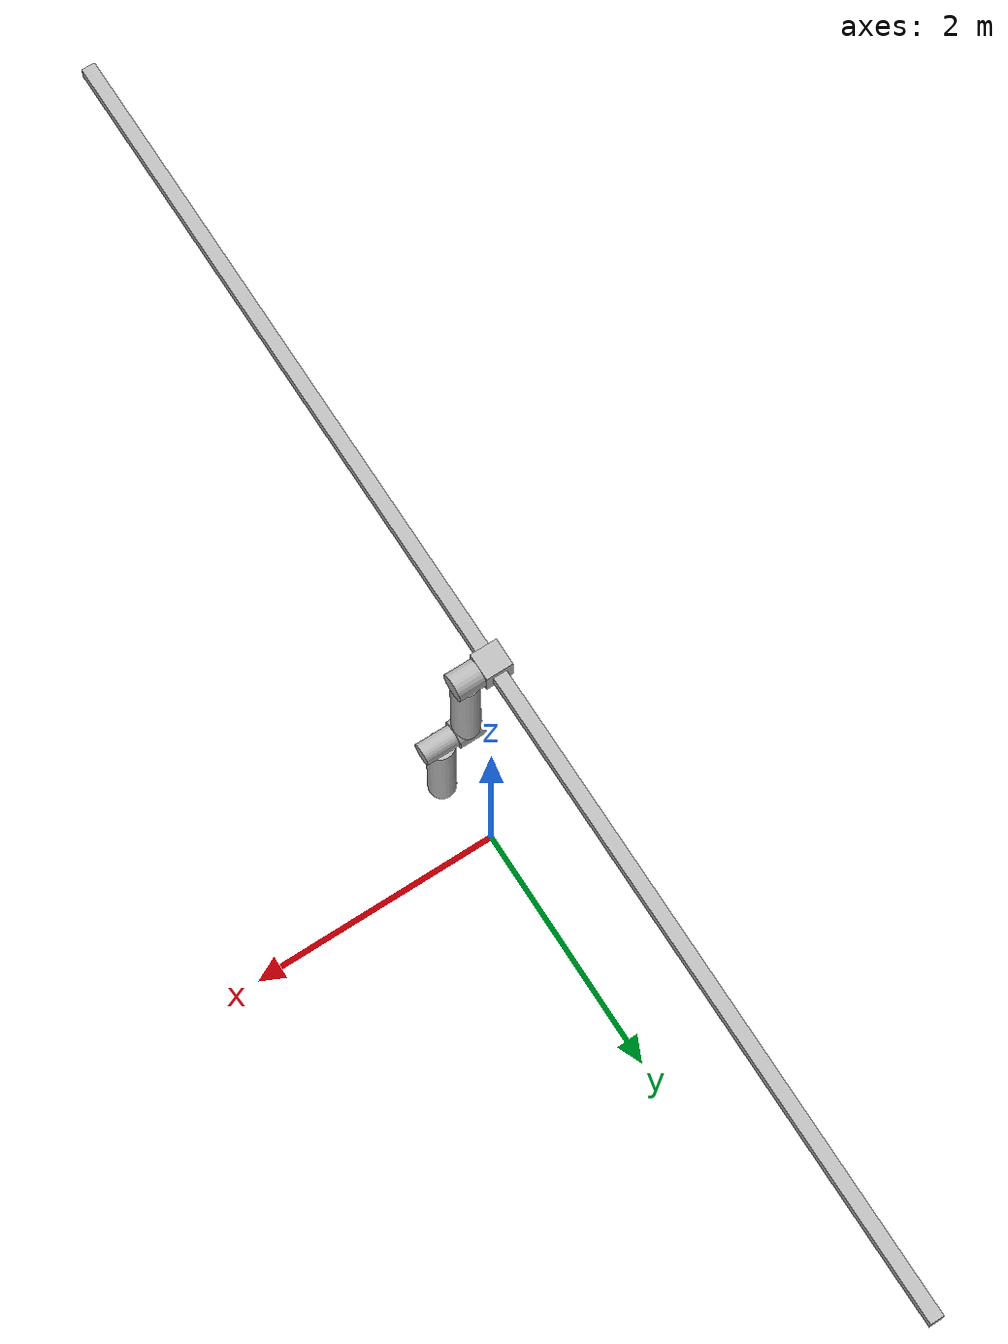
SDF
<?xml version="1.0" ?>
<sdf version="1.6">
  <world name="default">
    <physics name="1ms" type="ode">
      <max_step_size>0.01</max_step_size>
      <real_time_factor>1</real_time_factor>
    </physics>

    <light type="directional" name="sun">
      <cast_shadows>false</cast_shadows>
      <pose>0 0 10 0 0 0</pose>
      <diffuse>0.8 0.8 0.8 1</diffuse>
      <specular>0.2 0.2 0.2 1</specular>
      <attenuation>
        <range>1000</range>
        <constant>0.9</constant>
        <linear>0.01</linear>
        <quadratic>0.001</quadratic>
      </attenuation>
      <direction>-0.5 0.1 -0.9</direction>
    </light>

    <joint name="fixed to ground" type="prismatic">
      <parent>world</parent>
      <child>double_pendulum_rail::rail</child>
        <axis>
          <xyz>1.0 0 0</xyz>
          <limit>
            <lower>0.0</lower>
            <upper>0.0</upper>
          </limit>
        </axis>
    </joint>

    <model name="double_pendulum_rail">
      <!-- rail -->
      <link name="rail">
        <pose>0 0 4 0 0 0</pose>
        <visual name="vis_rail">
          <pose>0 0 0 0 0 0</pose>
          <geometry>
            <box>
              <size>0.1 10 0.1</size>
            </box>
          </geometry>
        </visual>
      </link>

      <!-- support -->
      <link name="trolley">
        <pose>0 0 4 0 0 0</pose>
        <inertial>
          <mass>100</mass>
        </inertial>
        <visual name="vis_trolley_on_rail">
          <pose>0 0 0 0 0 0</pose>
          <geometry>
            <box>
              <size>0.2 0.2 0.2</size>
            </box>
          </geometry>
        </visual>
      </link>
      <!-- upper link, length 1, IC -90 degrees -->
      <link name="upper_link">
        <pose>0.2 0 4 -3.14159 0 0</pose>
        <self_collide>0</self_collide>
        <inertial>
          <pose>0 0 0.5 0 0 0</pose>
        </inertial>
        <visual name="vis_upper_joint">
          <pose>0 0 0 0 1.5708 0</pose>
          <geometry>
            <cylinder>
              <radius>0.1</radius>
              <length>0.2</length>
            </cylinder>
          </geometry>
        </visual>
        <visual name="vis_lower_joint">
          <pose>0 0 1.0 0 1.5708 0</pose>
          <geometry>
            <cylinder>
              <radius>0.1</radius>
              <length>0.2</length>
            </cylinder>
          </geometry>
        </visual>
        <visual name="vis_cylinder">
          <pose>0 0 0.5 0 0 0</pose>
          <geometry>
            <cylinder>
              <radius>0.1</radius>
              <length>0.9</length>
            </cylinder>
          </geometry>
        </visual>
      </link>
      <!-- lower link, length 1, IC ~-120 degrees more -->
      <link name="lower_link">
        <pose>0.4 0 3 -3.14159 0 0</pose>
        <self_collide>0</self_collide>
        <inertial>
          <pose>0 0 0.5 0 0 0</pose>
        </inertial>
        <visual name="vis_lower_joint">
          <pose>0 0 0 0 1.5708 0</pose>
          <geometry>
            <cylinder>
              <radius>0.08</radius>
              <length>0.3</length>
            </cylinder>
          </geometry>
        </visual>
        <visual name="vis_cylinder">
          <pose>0 0 0.5 0 0 0</pose>
          <geometry>
            <cylinder>
              <radius>0.1</radius>
              <length>0.9</length>
            </cylinder>
          </geometry>
        </visual>
      </link>

      <!-- pin joint for upper link, at origin of upper link -->
      <joint name="upper_joint" type="revolute">
        <parent>trolley</parent>
        <child>upper_link</child>
        <axis>
          <xyz>1.0 0 0</xyz>
          <dynamics>
            <damping>0</damping>
            <friction>0.1</friction>
          </dynamics>
          <limit>
            <lower>-1e+16</lower>
            <upper>1e+16</upper>
          </limit>
        </axis>
      </joint>
      <!-- pin joint for lower link, at origin of child link -->
      <joint name="lower_joint" type="revolute">
        <parent>upper_link</parent>
        <child>lower_link</child>
        <axis>
          <xyz>1.0 0 0</xyz>
          <dynamics>
            <damping>0</damping>
            <friction>0.1</friction>
          </dynamics>
          <limit>
            <lower>-1e+16</lower>
            <upper>1e+16</upper>
          </limit>
        </axis>
      </joint>

      <joint name="rail_trolley_joint" type="prismatic">
        <parent>rail</parent>
        <child>trolley</child>
        <axis>
          <xyz>0 1.0 0</xyz>
          <limit>
            <lower>-5.0</lower>
            <upper>5.0</upper>
            <effort>1e12</effort>
          </limit>
        </axis>
      </joint>

      <plugin
        filename="ignition-gazebo-joint-state-publisher-system"
        name="ignition::gazebo::systems::JointStatePublisher">
      </plugin>

      <plugin
        filename="ignition-gazebo-pose-publisher-system"
        name="ignition::gazebo::systems::PosePublisher">
        <publish_link_pose>true</publish_link_pose>
        <use_pose_vector_msg>true</use_pose_vector_msg>
      </plugin>

      <plugin
        filename="ignition-gazebo-joint-controller-system"
        name="ignition::gazebo::systems::JointController">
        <joint_name>rail_trolley_joint</joint_name>
        <initial_velocity>0.0</initial_velocity>
        <min_position>-5.0</min_position>
        <max_position>5.0</max_position>
      </plugin>
    </model>
  </world>
</sdf>
